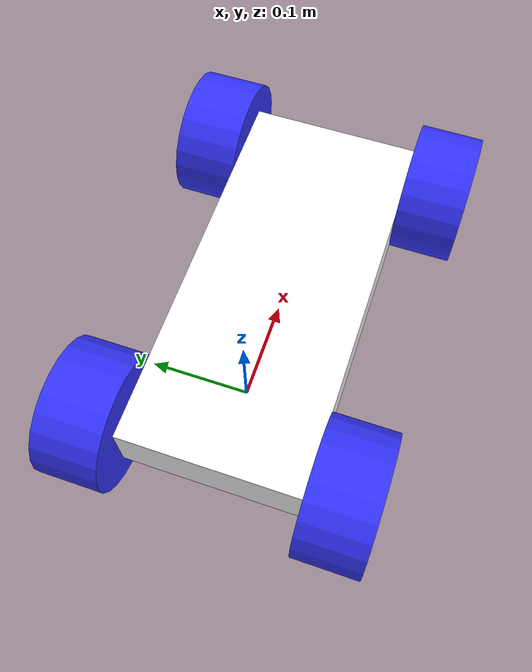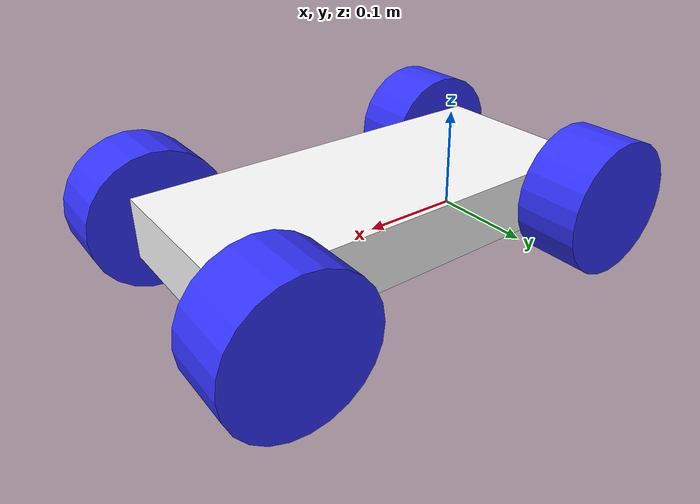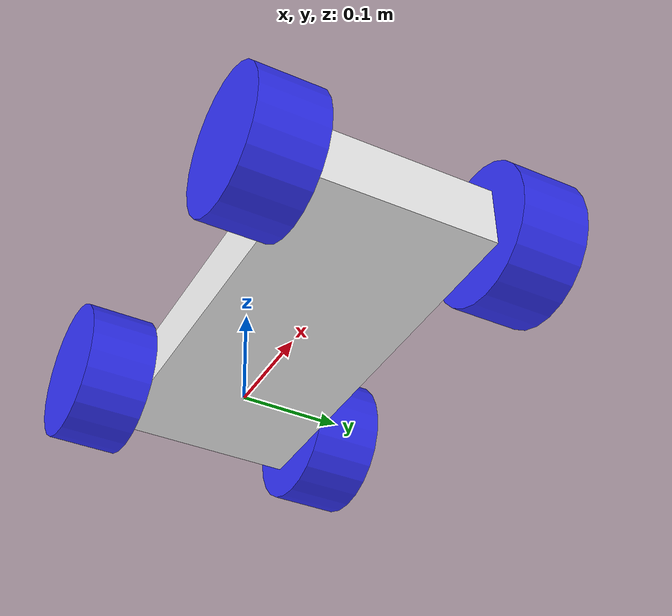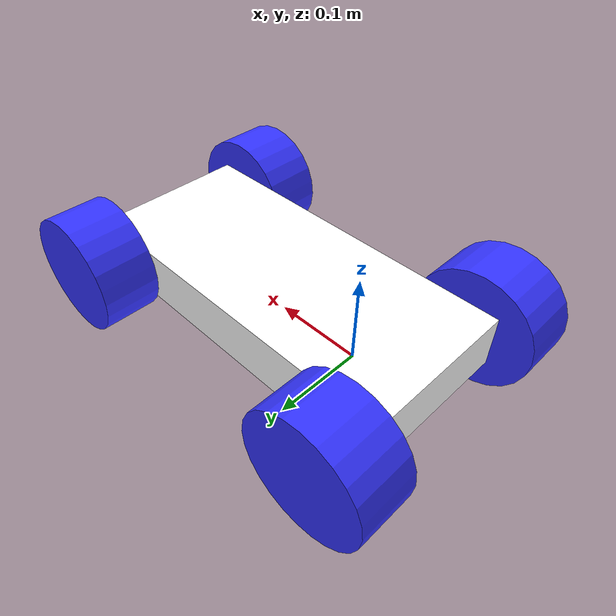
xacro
<?xml version="1.0"?>
<robot xmlns:xacro="http://www.ros.org/wiki/xacro"  name="robot">

    <xacro:arg name="use_ros2_control" default="true"/>

    <xacro:include filename="robot_core.xacro" />

    <xacro:if value="$(arg use_ros2_control)">
        <xacro:include filename="ros2_control.xacro" />
    </xacro:if>
    <xacro:unless value="$(arg use_ros2_control)">
        <xacro:include filename="gazebo_control.xacro" />
    </xacro:unless>

    <xacro:include filename="camera.xacro"/>

</robot>

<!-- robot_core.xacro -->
<robot xmlns:xacro="http://www.ros.org/wiki/xacro">

    <xacro:include filename="inertial_macros.xacro"/>

    <material name="white">
        <color rgba="1 1 1 1" />
    </material>

    <material name="orange">
        <color rgba="1 0.3 0.1 1"/>
    </material>

    <material name="blue">
        <color rgba="0.2 0.2 1 1"/>
    </material>

    <material name="black">
        <color rgba="0 0 0 1"/>
    </material>

    <!-- BASE LINK -->

    <link name="base_link">

    </link>

    <!-- CHASSIS LINK -->

    <joint name="chassis_joint" type="fixed">
        <parent link="base_link"/>
        <child link="chassis"/>
        <origin xyz="-0.1 0 0"/>
    </joint>

    <link name="chassis">
        <visual>
            <origin xyz="0.2 0 0.03"/>
            <geometry>
                <box size="0.4 0.18 0.06"/>
            </geometry>
            <material name="white"/>
        </visual>
        <collision>
            <origin xyz="0.2 0 0.03"/>
            <geometry>
                <box size="0.4 0.18 0.06"/>
            </geometry>
        </collision>
        <xacro:inertial_box mass="0.5" x="0.4" y="0.18" z="0.06">
            <origin xyz="0.2 0 0.03" rpy="0 0 0"/>
        </xacro:inertial_box>
    </link>

    <gazebo reference="chassis">
        <material>Gazebo/White</material>
    </gazebo>
    <!-- BACK LEFT WHEEL LINK -->

    <joint name="left_wheel_joint" type="continuous">
        <parent link="base_link"/>
        <child link="back_left_wheel"/>
        <origin xyz="-0.075 0.1225 0.03" rpy="-${pi/2} 0 0" />
        <axis xyz="0 0 1"/>
    </joint>

    <link name="back_left_wheel">
        <visual>
            <geometry>
                <cylinder radius="0.0675" length="0.065"/>
            </geometry>
            <material name="blue"/>
        </visual>
        <collision>
            <geometry>
                <sphere radius="0.0675"/>
            </geometry>
        </collision>
        <xacro:inertial_cylinder mass="0.1" length="0.065" radius="0.0675">
            <origin xyz="0 0 0" rpy="0 0 0"/>
        </xacro:inertial_cylinder>
    </link>

    <gazebo reference="back_left_wheel">
        <material>Gazebo/Blue</material>
    </gazebo>

    <!-- BACK RIGHT WHEEL LINK -->

    <joint name="right_wheel_joint" type="continuous">
        <parent link="base_link"/>
        <child link="back_right_wheel"/>
        <origin xyz="-0.075 -0.1225 0.03" rpy="${pi/2} 0 0" />
        <axis xyz="0 0 -1"/>
    </joint>

    <link name="back_right_wheel">
        <visual>
            <geometry>
                <cylinder radius="0.0675" length="0.065"/>
            </geometry>
            <material name="blue"/>
        </visual>
        <collision>
            <geometry>
                <sphere radius="0.0675"/>
            </geometry>
        </collision>
        <xacro:inertial_cylinder mass="0.1" length="0.065" radius="0.0675">
            <origin xyz="0 0 0" rpy="0 0 0"/>
        </xacro:inertial_cylinder>
    </link>

    <gazebo reference="back_right_wheel">
        <material>Gazebo/Blue</material>
    </gazebo>

    <!-- FRONT RIGHT WHEEL LINK -->

    <joint name="front_right_wheel_joint" type="fixed">
        <parent link="base_link"/>
        <child link="front_right_wheel"/>
        <origin xyz="0.275 0.1225 0.03" rpy="-${pi/2} 0 0" />
        <axis xyz="0 0 1"/>
    </joint>

    <link name="front_right_wheel">
        <visual>
            <geometry>
                <cylinder radius="0.0675" length="0.065"/>
            </geometry>
            <material name="blue"/>
        </visual>
        <collision>
            <geometry>
                <cylinder radius="0.0675" length="0.065"/>
            </geometry>
        </collision>
        <xacro:inertial_cylinder mass="0.1" length="0.065" radius="0.0675">
            <origin xyz="0 0 0" rpy="0 0 0"/>
        </xacro:inertial_cylinder>
    </link>

    <gazebo reference="front_right_wheel">
        <material>Gazebo/Blue</material>
        <mu1 value="0.001"/>
        <mu2 value="0.001"/>
    </gazebo>

    <!-- FRONT LEFT WHEEL LINK -->

    <joint name="front_left_wheel_joint" type="fixed">
        <parent link="base_link"/>
        <child link="front_left_wheel"/>
        <origin xyz="0.275 -0.1225 0.03" rpy="${pi/2} 0 0" />
        <axis xyz="0 0 -1"/>
    </joint>

    <link name="front_left_wheel">
        <visual>
            <geometry>
                <cylinder radius="0.0675" length="0.065"/>
            </geometry>
            <material name="blue"/>
        </visual>
        <collision>
            <geometry>
                <cylinder radius="0.0675" length="0.065"/>
            </geometry>
        </collision>
        <xacro:inertial_cylinder mass="0.1" length="0.065" radius="0.0675">
            <origin xyz="0 0 0" rpy="0 0 0"/>
        </xacro:inertial_cylinder>
    </link>

    <gazebo reference="front_left_wheel">
        <material>Gazebo/Blue</material>
        <mu1 value="0.001"/>
        <mu2 value="0.001"/>
    </gazebo>

</robot>
